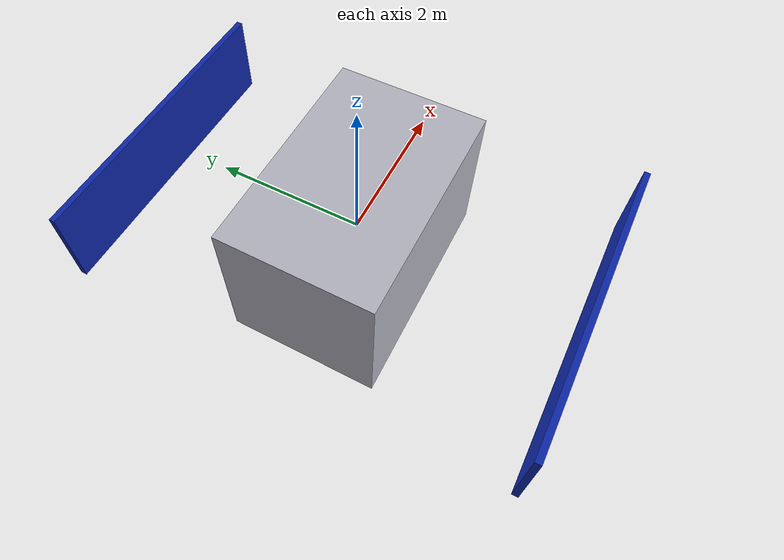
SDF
<?xml version="1.0" ?>
<sdf version="1.6">
  <model name="target">
    <static>false</static>
    <link name="body">
      <inertial><mass>1</mass><inertia><ixx>1</ixx><iyy>1</iyy><izz>1</izz></inertia></inertial>
      <visual name="bus"><geometry><box><size>3 2 2</size></box></geometry><material><ambient>0.7 0.7 0.75 1</ambient><diffuse>0.7 0.7 0.75 1</diffuse></material></visual>
      <visual name="panel_left"><pose>0 3 0 0 0 0</pose><geometry><box><size>4 0.08 1.2</size></box></geometry><material><ambient>0.02 0.05 0.20 1</ambient><diffuse>0.05 0.15 0.65 1</diffuse></material></visual>
      <visual name="panel_right"><pose>0 -3 0 0 0 0</pose><geometry><box><size>4 0.08 1.2</size></box></geometry><material><ambient>0.02 0.05 0.20 1</ambient><diffuse>0.05 0.15 0.65 1</diffuse></material></visual>
    </link>
  </model>
</sdf>
